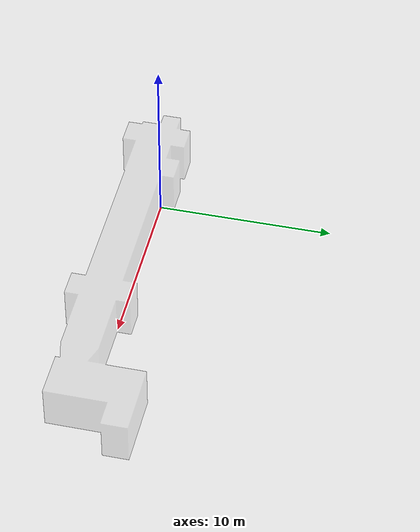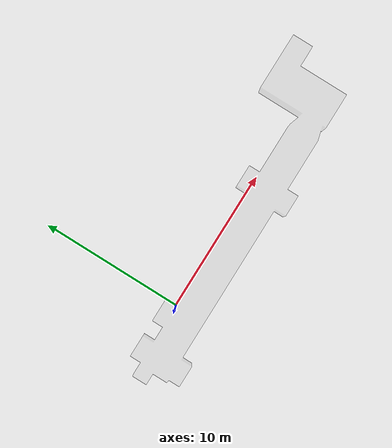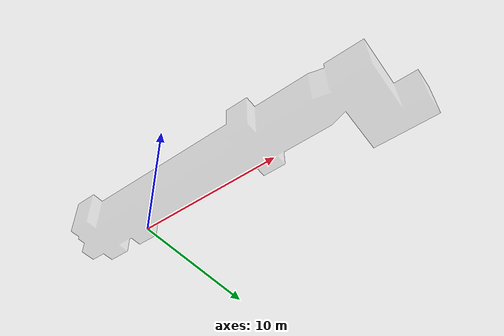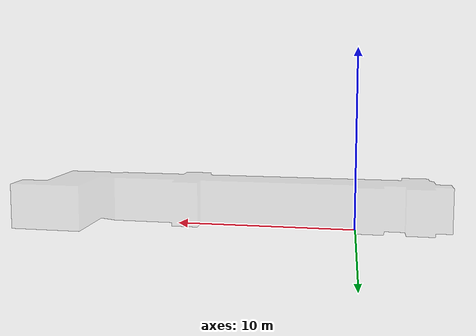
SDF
<?xml version="1.0" ?>
<sdf version="1.4">
  <model name="lab_without_windows">
    <static>true</static>
    <link name="link">
      <inertial>
        <mass>1000</mass>
      </inertial>
      <collision name="collision">
        <geometry>
          <mesh>
            <uri>model://lab_without_windows/meshes/lab_without_windows.stl</uri>
          </mesh>
        </geometry>
      </collision>
      <visual name="visual">
        <transparency>0.75</transparency>
        <geometry>
          <mesh>
            <uri>model://lab_without_windows/meshes/lab_without_windows.stl</uri>
          </mesh>
        </geometry>
      </visual>
    </link>
  </model>
</sdf>
